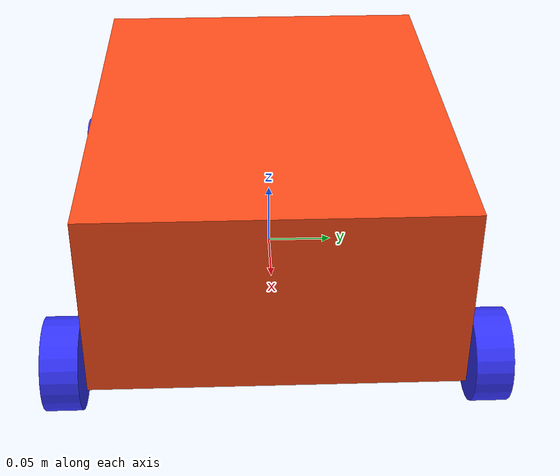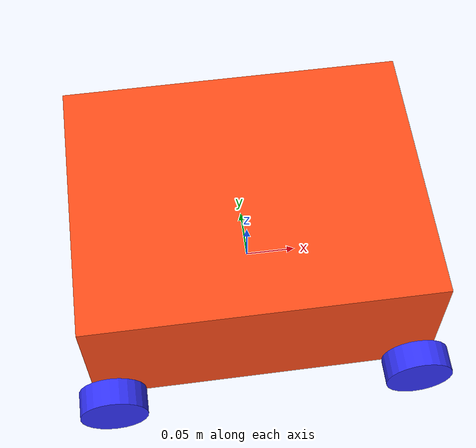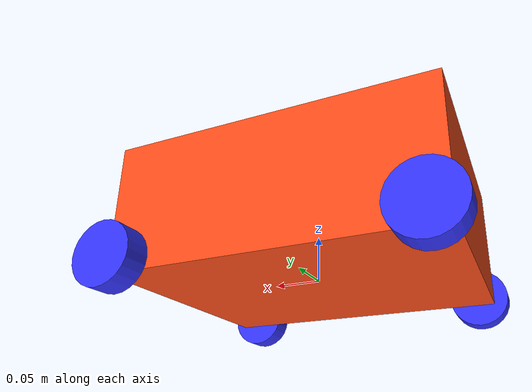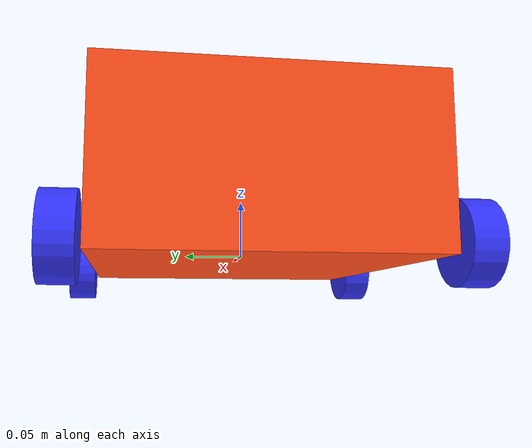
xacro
<?xml version="1.0"?>
<robot xmlns:xacro="http://www.ros.org/wiki/xacro" >

    <xacro:include filename="inertial_macros.xacro"/>

    <xacro:property name="chassis_length" value="0.335"/>
    <xacro:property name="chassis_width" value="0.265"/>
    <xacro:property name="chassis_height" value="0.138"/>
    <xacro:property name="chassis_mass" value="1.0"/>
    <xacro:property name="wheel_radius" value="0.033"/>
    <xacro:property name="wheel_thickness" value="0.026"/>
    <xacro:property name="wheel_mass" value="0.05"/>
    <xacro:property name="wheel_offset_x" value="0.15"/>
    <xacro:property name="wheel_offset_y" value="0.1485"/>
    <xacro:property name="wheel_offset_z" value="0.01"/>
    <xacro:property name="caster_wheel_radius" value="0.01"/>
    <xacro:property name="caster_wheel_mass" value="0.01"/>
    <xacro:property name="caster_wheel_offset_x" value="0.075"/>
    <xacro:property name="caster_wheel_offset_z" value="${wheel_offset_z - wheel_radius + caster_wheel_radius}"/>

    <material name="white">
        <color rgba="1 1 1 1" />
    </material>

    <material name="orange">
        <color rgba="1 0.3 0.1 1"/>
    </material>

    <material name="blue">
        <color rgba="0.2 0.2 1 1"/>
    </material>

    <material name="black">
        <color rgba="0 0 0 1"/>
    </material>

    <material name="red">
        <color rgba="1 0 0 1"/>
    </material>

    <!-- BASE LINK -->

    <link name="base_link">

    </link>

    <!-- BASE_FOOTPRINT LINK -->

    <joint name="base_footprint_joint" type="fixed">
        <parent link="base_link"/>
        <child link="base_footprint"/>
        <origin xyz="0 0 0" rpy="0 0 0"/>
    </joint>

    <link name="base_footprint">
    </link>

    <!-- CHASSIS LINK -->

    <joint name="chassis_joint" type="fixed">
        <parent link="base_link"/>
        <child link="chassis"/>
        <origin xyz="${-chassis_length/2} 0 ${-wheel_offset_z}"/>
    </joint>

    <link name="chassis">
        <visual>
            <origin xyz="${chassis_length/2} 0 ${chassis_height/2}"/>
            <geometry>
                <box size="${chassis_length} ${chassis_width} ${chassis_height}"/>
            </geometry>
            <material name="orange"/>
        </visual>
        <collision>
            <origin xyz="${chassis_length/2} 0 ${chassis_height/2}"/>
            <geometry>
                <box size="${chassis_length} ${chassis_width} ${chassis_height}"/>
            </geometry>
        </collision>
        <xacro:inertial_box mass="0.5" x="${chassis_length}" y="${chassis_width}" z="${chassis_height}">
            <origin xyz="${chassis_length/2} 0 ${chassis_height/2}" rpy="0 0 0"/>
        </xacro:inertial_box>
    </link>

    <gazebo reference="chassis">
        <material>Gazebo/Orange</material>
    </gazebo>

    <!-- LEFT FRONT WHEEL -->
    <joint name="left_front_wheel_joint" type="continuous">
        <parent link="base_link"/>
        <child link="left_front_wheel"/>
        <origin xyz="${wheel_offset_x} ${wheel_offset_y} 0" rpy="-${pi/2} 0 0"/>
        <axis xyz="0 0 1"/>
    </joint>

    <link name="left_front_wheel">
        <visual>
            <geometry>
                <cylinder radius="${wheel_radius}" length="${wheel_thickness}"/>
            </geometry>
            <material name="blue"/>
        </visual>
        <collision>
            <geometry>
                <sphere radius="${wheel_radius}"/>
            </geometry>
        </collision>
        <xacro:inertial_cylinder mass="${wheel_mass}" length="${wheel_thickness}" radius="${wheel_radius}">
            <origin xyz="0 0 0" rpy="0 0 0"/>
        </xacro:inertial_cylinder>
    </link>

    <gazebo reference="left_front_wheel">
        <material>Gazebo/Blue</material>
    </gazebo>

    <!-- LEFT BACK WHEEL -->
    <joint name="left_back_wheel_joint" type="continuous">
        <parent link="base_link"/>
        <child link="left_back_wheel"/>
        <origin xyz="${-wheel_offset_x} ${wheel_offset_y} 0" rpy="-${pi/2} 0 0"/>
        <axis xyz="0 0 1"/>
    </joint>

    <link name="left_back_wheel">
        <visual>
            <geometry>
                <cylinder radius="${wheel_radius}" length="${wheel_thickness}"/>
            </geometry>
            <material name="blue"/>
        </visual>
        <collision>
            <geometry>
                <sphere radius="${wheel_radius}"/>
            </geometry>
        </collision>
        <xacro:inertial_cylinder mass="${wheel_mass}" length="${wheel_thickness}" radius="${wheel_radius}">
            <origin xyz="0 0 0" rpy="0 0 0"/>
        </xacro:inertial_cylinder>
    </link>

    <gazebo reference="left_back_wheel">
        <material>Gazebo/Blue</material>
    </gazebo>

    <!-- RIGHT FRONT WHEEL -->
    <joint name="right_front_wheel_joint" type="continuous">
        <parent link="base_link"/>
        <child link="right_front_wheel"/>
        <origin xyz="${wheel_offset_x} ${-wheel_offset_y} 0" rpy="${pi/2} 0 0"/>
        <axis xyz="0 0 -1"/>
    </joint>

    <link name="right_front_wheel">
        <visual>
            <geometry>
                <cylinder radius="${wheel_radius}" length="${wheel_thickness}"/>
            </geometry>
            <material name="blue"/>
        </visual>
        <collision>
            <geometry>
                <sphere radius="${wheel_radius}"/>
            </geometry>
        </collision>
        <xacro:inertial_cylinder mass="${wheel_mass}" length="${wheel_thickness}" radius="${wheel_radius}">
            <origin xyz="0 0 0" rpy="0 0 0"/>
        </xacro:inertial_cylinder>
    </link>

    <gazebo reference="right_front_wheel">
        <material>Gazebo/Blue</material>
    </gazebo>

    <!-- RIGHT BACK WHEEL -->
    <joint name="right_back_wheel_joint" type="continuous">
        <parent link="base_link"/>
        <child link="right_back_wheel"/>
        <origin xyz="${-wheel_offset_x} ${-wheel_offset_y} 0" rpy="${pi/2} 0 0"/>
        <axis xyz="0 0 -1"/>
    </joint>

    <link name="right_back_wheel">
        <visual>
            <geometry>
                <cylinder radius="${wheel_radius}" length="${wheel_thickness}"/>
            </geometry>
            <material name="blue"/>
        </visual>
        <collision>
            <geometry>
                <sphere radius="${wheel_radius}"/>
            </geometry>
        </collision>
        <xacro:inertial_cylinder mass="${wheel_mass}" length="${wheel_thickness}" radius="${wheel_radius}">
            <origin xyz="0 0 0" rpy="0 0 0"/>
        </xacro:inertial_cylinder>
    </link>

    <gazebo reference="right_back_wheel">
        <material>Gazebo/Blue</material>
    </gazebo>

</robot>
